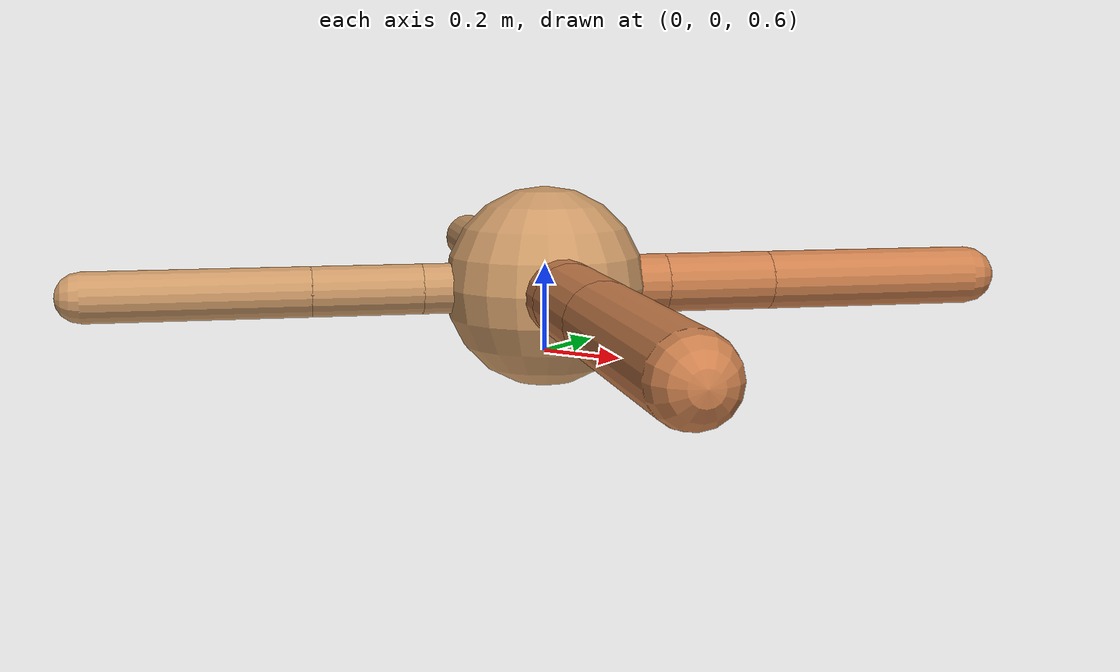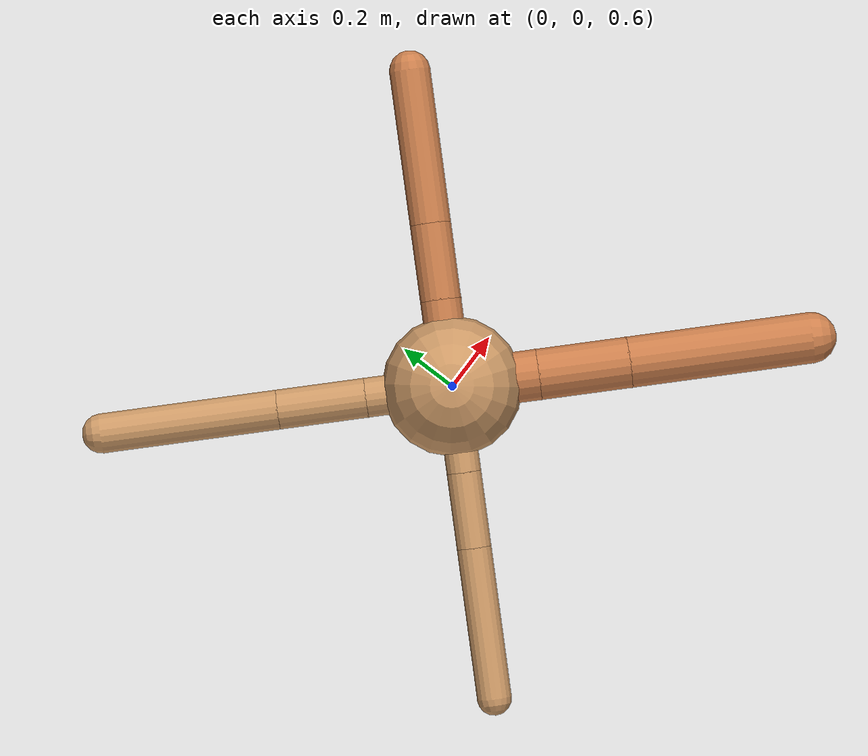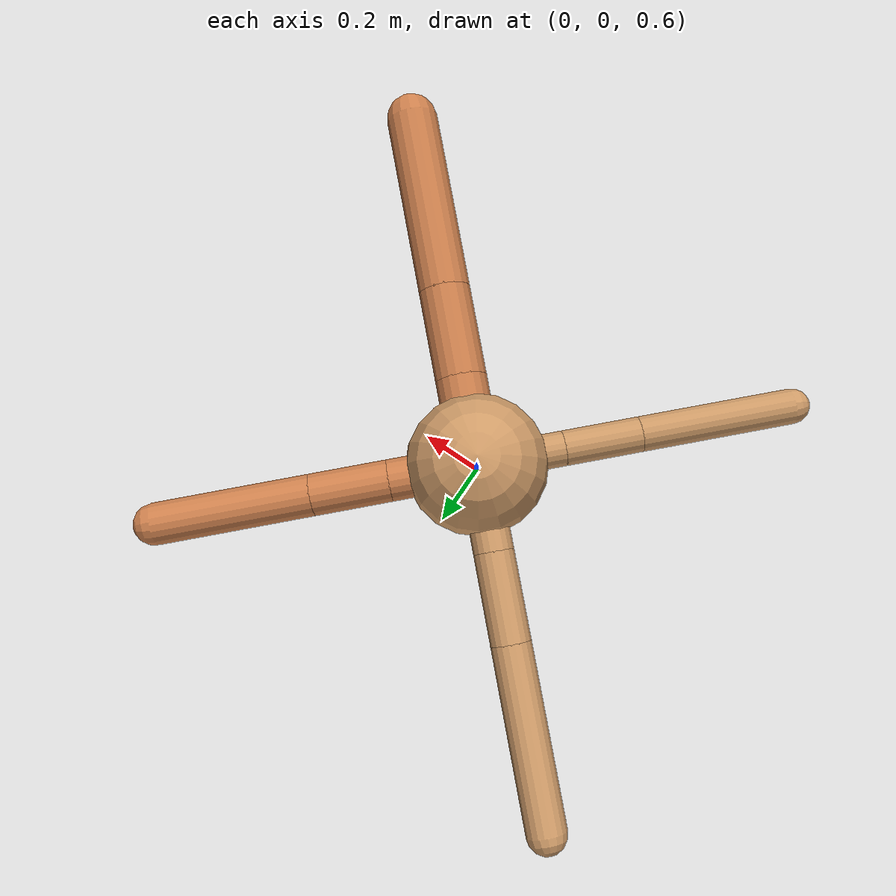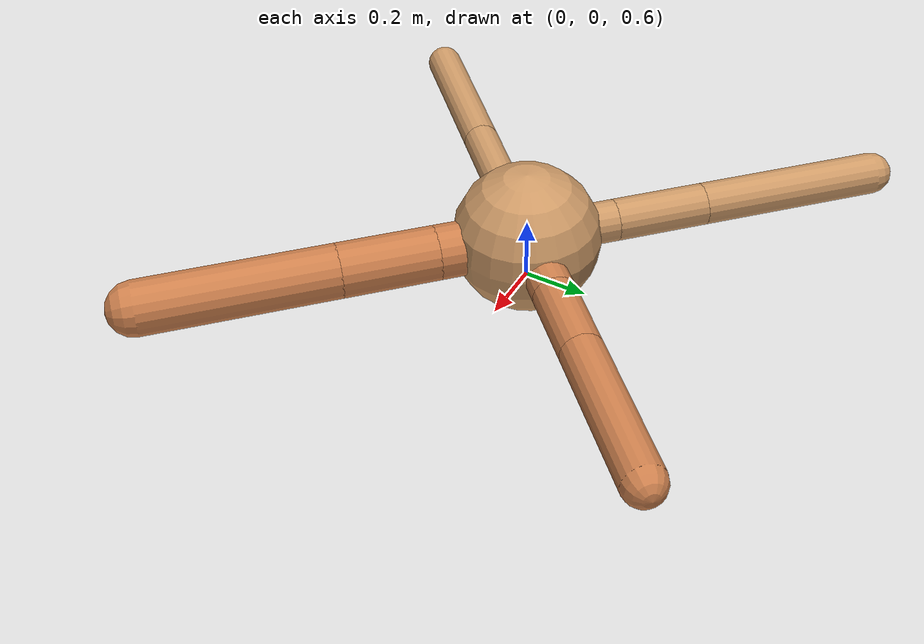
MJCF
<?xml version="1.0" ?>
<mujoco model="ant">

	<compiler angle="degree" coordinate="local" inertiafromgeom="true"/>

	<option integrator="RK4" timestep="0.01"/>

	<custom>

		<numeric data="0.0 0.0 0.55 1.0 0.0 0.0 0.0 0.0 1.0 0.0 -1.0 0.0 -1.0 0.0 1.0" name="init_qpos"/>

	</custom>

	<default>

		<joint armature="1" damping="1" limited="true"/>

		<geom conaffinity="0" condim="3" density="5.0" friction="1.5 0.1 0.1" margin="0.01" rgba="0.8 0.6 0.4 1"/>

	</default>

	<worldbody>

		<body name="torso" pos="0 0 0.75">

			<geom name="torso_geom" pos="0 0 0" size="0.22907691236575575" type="sphere"/>

			<!--joint armature="0" damping="0" limited="false" margin="0.01" name="root" pos="0 0 0" type="free"/-->

			<body name="front_left_leg" pos="0 0 0">

				<geom fromto="0 0 0 0.2 0.2 0" name="aux_1_geom" size="0.06764640631122766" type="capsule" rgba=".8 .5 .3 1"/>

				<body name="aux_1" pos="0.2 0.2 0">

					<joint axis="0 0 1" name="hip_1" pos="0.0 0.0 0.0" range="-40 40" type="hinge"/>

					<geom fromto="0 0 0 0.17739459791955992 0.17739459791955992 0" name="left_leg_geom" size="0.06764640631122766" type="capsule" rgba=".8 .5 .3 1"/>

					<body pos="0.17739459791955992 0.17739459791955992 0" name="front_left_foot">

						<joint axis="-1 1 0" name="ankle_1" pos="0.0 0.0 0.0" range="30 100" type="hinge"/>

						<geom fromto="0 0 0 0.35478919583911983 0.35478919583911983 0" name="left_ankle_geom" size="0.06764640631122766" type="capsule" rgba=".8 .5 .3 1"/>

					</body>

				</body>

			</body>

			<body name="front_right_leg" pos="0 0 0">

				<geom fromto="0 0 0 -0.2 0.2 0" name="aux_2_geom" size="0.06540947962892112" type="capsule"/>

				<body name="aux_2" pos="-0.2 0.2 0">

					<joint axis="0 0 1" name="hip_2" pos="0.0 0.0 0.0" range="-40 40" type="hinge"/>

					<geom fromto="0 0 0 -0.20474148616746546 0.20474148616746546 0" name="right_leg_geom" size="0.06540947962892112" type="capsule"/>

					<body pos="-0.20474148616746546 0.20474148616746546 0" name="front_right_foot">

						<joint axis="1 1 0" name="ankle_2" pos="0.0 0.0 0.0" range="-100 -30" type="hinge"/>

						<geom fromto="0 0 0 -0.4094829723349309 0.4094829723349309 0" name="right_ankle_geom" size="0.06540947962892112" type="capsule"/>

					</body>

				</body>

			</body>

			<body name="left_back_leg" pos="0 0 0">

				<geom fromto="0 0 0 -0.2 -0.2 0" name="aux_3_geom" size="0.05680918807179159" type="capsule"/>

				<body name="aux_3" pos="-0.2 -0.2 0">

					<joint axis="0 0 1" name="hip_3" pos="0.0 0.0 0.0" range="-40 40" type="hinge"/>

					<geom fromto="0 0 0 -0.17509942478030016 -0.17509942478030016 0" name="back_leg_geom" size="0.05680918807179159" type="capsule"/>

					<body pos="-0.17509942478030016 -0.17509942478030016 0" name="left_back_foot">

						<joint axis="-1 1 0" name="ankle_3" pos="0.0 0.0 0.0" range="-100 -30" type="hinge"/>

						<geom fromto="0 0 0 -0.3501988495606003 -0.3501988495606003 0" name="third_ankle_geom" size="0.05680918807179159" type="capsule"/>

					</body>

				</body>

			</body>

			<body name="right_back_leg" pos="0 0 0">

				<geom fromto="0 0 0 0.2 -0.2 0" name="aux_4_geom" size="0.08425163555462904" type="capsule" rgba=".8 .5 .3 1"/>

				<body name="aux_4" pos="0.2 -0.2 0">

					<joint axis="0 0 1" name="hip_4" pos="0.0 0.0 0.0" range="-40 40" type="hinge"/>

					<geom fromto="0 0 0 0.21110301642832316 -0.21110301642832316 0" name="rightback_leg_geom" size="0.08425163555462904" type="capsule" rgba=".8 .5 .3 1"/>

					<body pos="0.21110301642832316 -0.21110301642832316 0" name="right_back_foot">

						<joint axis="1 1 0" name="ankle_4" pos="0.0 0.0 0.0" range="30 100" type="hinge"/>

						<geom fromto="0 0 0 0.4222060328566463 -0.4222060328566463 0" name="fourth_ankle_geom" size="0.08425163555462904" type="capsule" rgba=".8 .5 .3 1"/>

					</body>

				</body>

			</body>

		</body>

	</worldbody>

	<actuator>

		<motor ctrllimited="true" ctrlrange="-1.0 1.0" joint="hip_4" gear="150"/>

		<motor ctrllimited="true" ctrlrange="-1.0 1.0" joint="ankle_4" gear="150"/>

		<motor ctrllimited="true" ctrlrange="-1.0 1.0" joint="hip_1" gear="150"/>

		<motor ctrllimited="true" ctrlrange="-1.0 1.0" joint="ankle_1" gear="150"/>

		<motor ctrllimited="true" ctrlrange="-1.0 1.0" joint="hip_2" gear="150"/>

		<motor ctrllimited="true" ctrlrange="-1.0 1.0" joint="ankle_2" gear="150"/>

		<motor ctrllimited="true" ctrlrange="-1.0 1.0" joint="hip_3" gear="150"/>

		<motor ctrllimited="true" ctrlrange="-1.0 1.0" joint="ankle_3" gear="150"/>

	</actuator>

</mujoco>
